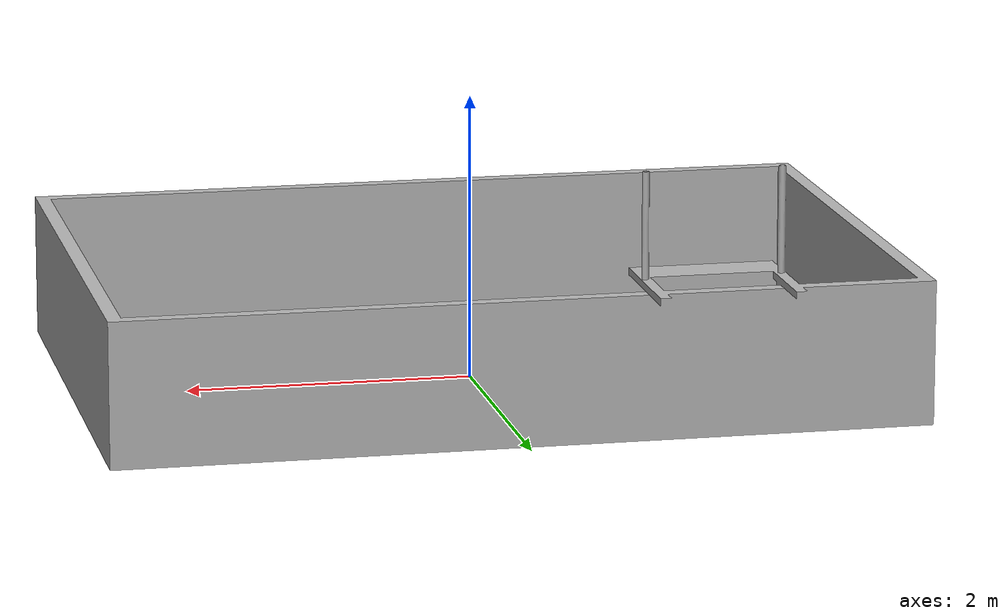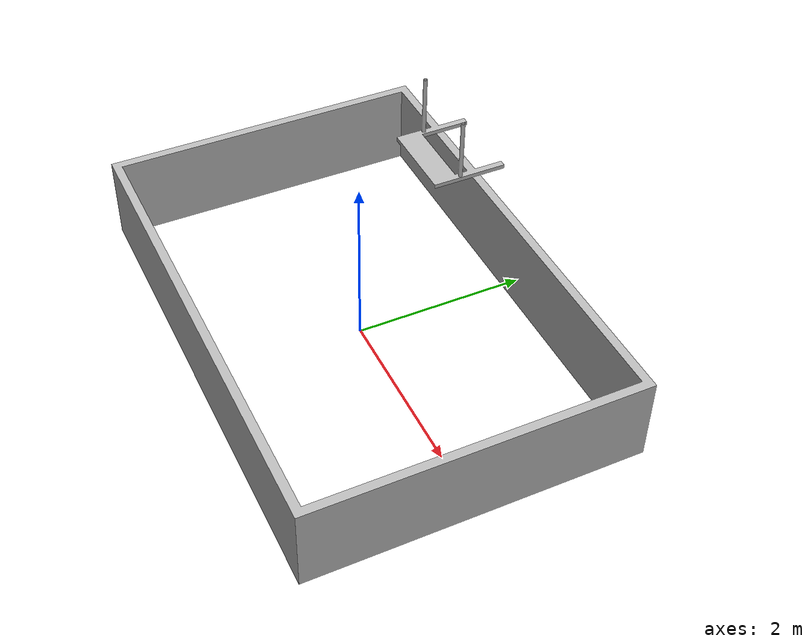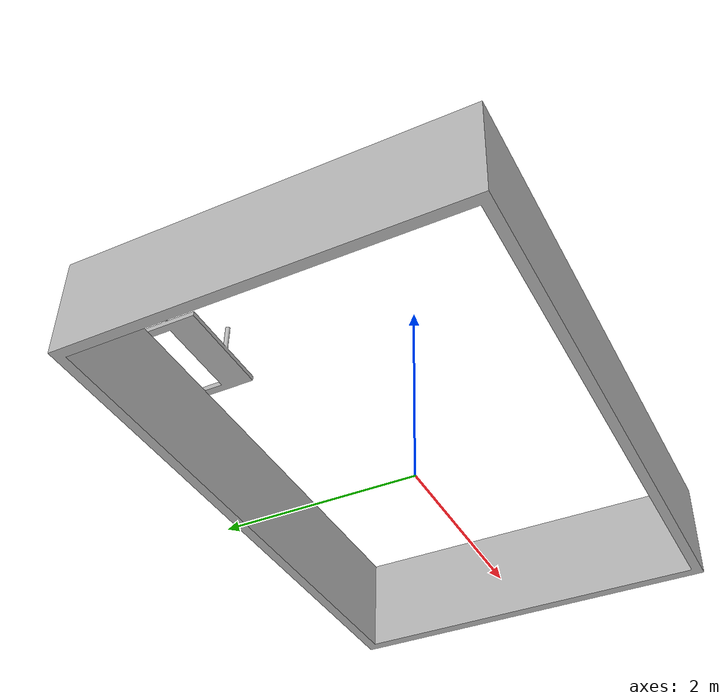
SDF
<?xml version="1.0" ?>
<sdf version="1.5">
  <model name="NASA Lunabotics Competiton Arena">
    <pose>0 0 0  0 0 0</pose>
    <static>true</static>
    <link name="body">
      <collision name="collision">
        <geometry>
          <mesh><uri>model://lunabotics_arena/meshes/lunabotics_arena.stl</uri></mesh>
        </geometry>
      </collision>
      <visual name="visual">
        <geometry>
          <mesh><uri>model://lunabotics_arena/meshes/lunabotics_arena.stl</uri></mesh>
        </geometry>
      </visual>
    </link>
  </model>
</sdf>
